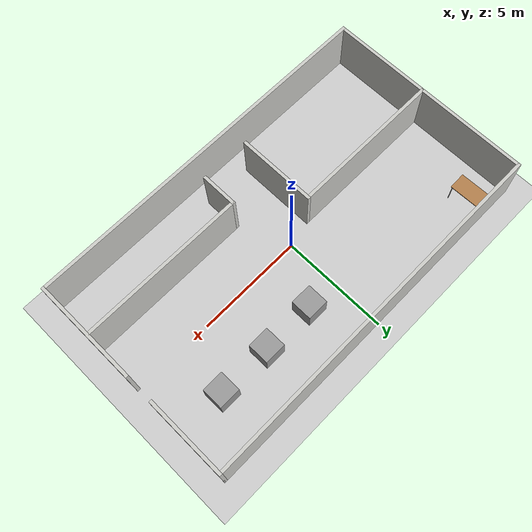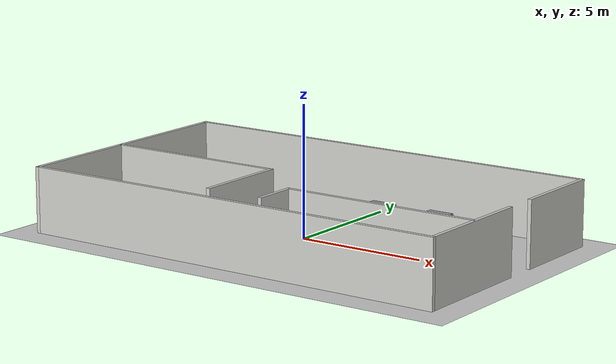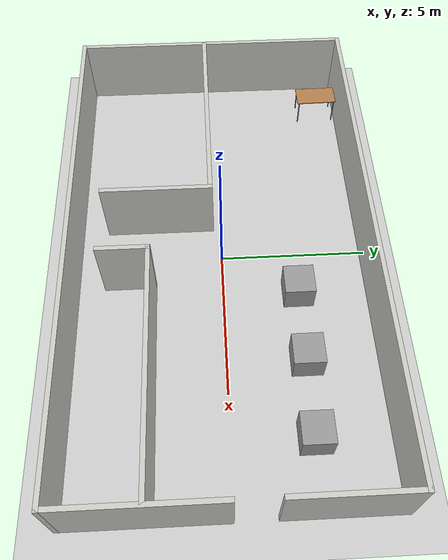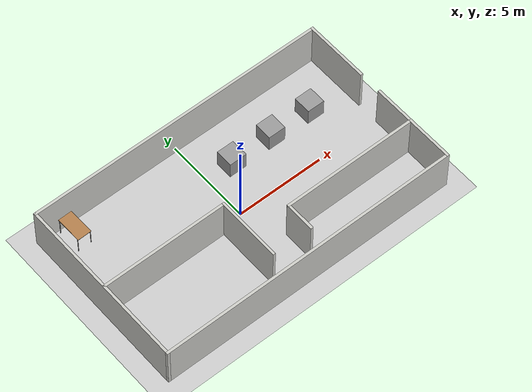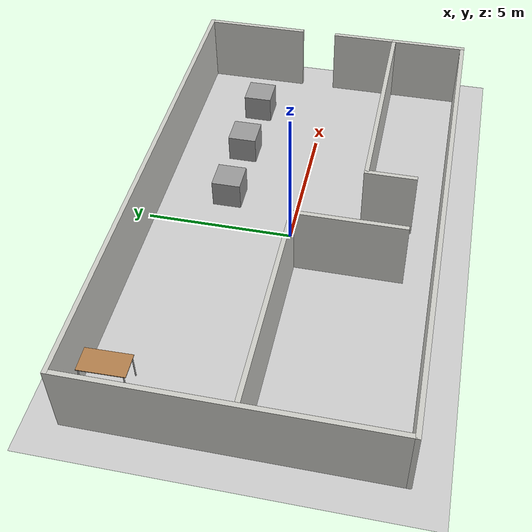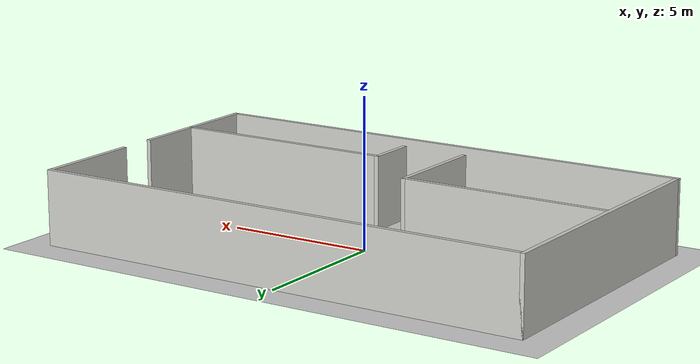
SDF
<sdf version="1.6">
 <world name="default">
  <light name="sun" type="directional">
   <pose>0 0 10 0 -0 0</pose>
   <diffuse>0.8 0.8 0.8 1</diffuse>
   <specular>0.2 0.2 0.2 1</specular>
   <attenuation>
    <range>1000</range>
    <constant>0.9</constant>
    <linear>0.01</linear>
    <quadratic>0.001</quadratic>
   </attenuation>
   <direction>-0.5 0.1 -0.9</direction>
  </light>
  <model name="ground_plane">
   <static>1</static>
   <link name="link">
    <collision name="collision">
     <geometry><plane><normal>0 0 1</normal><size>100 100</size></plane></geometry>
     <surface>
      <contact><collide_bitmask>65535</collide_bitmask></contact>
      <friction><ode><mu>100</mu><mu2>50</mu2></ode></friction>
     </surface>
    </collision>
    <visual name="visual">
     <cast_shadows>0</cast_shadows>
     <geometry><plane><normal>0 0 1</normal><size>100 100</size></plane></geometry>
     <material>
      <script><uri>file://media/materials/scripts/gazebo.material</uri><name>Gazebo/Grey</name></script>
     </material>
    </visual>
   </link>
  </model>
  <gravity>0 0 -9.8</gravity>
  <magnetic_field>6e-06 2.3e-05 -4.2e-05</magnetic_field>
  <atmosphere type="adiabatic"/>
  <physics name="default_physics" default="0" type="ode">
   <max_step_size>0.001</max_step_size>
   <real_time_factor>1</real_time_factor>
   <real_time_update_rate>1000</real_time_update_rate>
  </physics>
  <scene><ambient>0.4 0.4 0.4 1</ambient><background>0.7 0.7 0.7 1</background><shadows>1</shadows></scene>
  <audio><device>default</device></audio>
  <spherical_coordinates>
   <surface_model>EARTH_WGS84</surface_model>
   <latitude_deg>0</latitude_deg>
   <longitude_deg>0</longitude_deg>
   <elevation>0</elevation>
   <heading_deg>0</heading_deg>
  </spherical_coordinates>
  <model name="도면2">
   <pose>0.131104 -0.023581 0 0 -0 0</pose>
   <link name="Wall_0">
    <collision name="Wall_0_Collision">
     <geometry><box><size>5 0.15 2.5</size></box></geometry>
     <pose>0 0 1.25 0 -0 0</pose>
    </collision>
    <visual name="Wall_0_Visual">
     <pose>0 0 1.25 0 -0 0</pose>
     <geometry><box><size>5 0.15 2.5</size></box></geometry>
     <material>
      <script><uri>file://media/materials/scripts/gazebo.material</uri><name>Gazebo/CeilingTiled</name></script>
      <ambient>1 1 1 1</ambient>
     </material>
     <meta><layer>0</layer></meta>
    </visual>
    <pose>8.55 -2.5 0 0 -0 -1.5708</pose>
   </link>
   <link name="Wall_1">
    <collision name="Wall_1_Collision">
     <geometry><box><size>17.25 0.15 2.5</size></box></geometry>
     <pose>0 0 1.25 0 -0 0</pose>
    </collision>
    <visual name="Wall_1_Visual">
     <pose>0 0 1.25 0 -0 0</pose>
     <geometry><box><size>17.25 0.15 2.5</size></box></geometry>
     <material>
      <script><uri>file://media/materials/scripts/gazebo.material</uri><name>Gazebo/CeilingTiled</name></script>
      <ambient>1 1 1 1</ambient>
     </material>
     <meta><layer>0</layer></meta>
    </visual>
    <pose>0 -4.925 0 0 -0 3.14159</pose>
   </link>
   <link name="Wall_12">
    <collision name="Wall_12_Collision">
     <geometry><box><size>1.75 0.15 2.5</size></box></geometry>
     <pose>0 0 1.25 0 -0 0</pose>
    </collision>
    <visual name="Wall_12_Visual">
     <pose>0 0 1.25 0 -0 0</pose>
     <geometry><box><size>1.75 0.15 2.5</size></box></geometry>
     <material>
      <script><uri>file://media/materials/scripts/gazebo.material</uri><name>Gazebo/CeilingTiled</name></script>
      <ambient>1 1 1 1</ambient>
     </material>
     <meta><layer>0</layer></meta>
    </visual>
    <pose>0.88103 -3.10948 0 0 -0 1.5708</pose>
   </link>
   <link name="Wall_13">
    <collision name="Wall_13_Collision">
     <geometry><box><size>7.75 0.15 2.5</size></box></geometry>
     <pose>0 0 1.25 0 -0 0</pose>
    </collision>
    <visual name="Wall_13_Visual">
     <pose>0 0 1.25 0 -0 0</pose>
     <geometry><box><size>7.75 0.15 2.5</size></box></geometry>
     <material>
      <script><uri>file://media/materials/scripts/gazebo.material</uri><name>Gazebo/CeilingTiled</name></script>
      <ambient>1 1 1 1</ambient>
     </material>
     <meta><layer>0</layer></meta>
    </visual>
    <pose>4.68103 -2.30949 0 0 -0 0</pose>
   </link>
   <link name="Wall_2">
    <collision name="Wall_2_Collision">
     <geometry><box><size>10 0.15 2.5</size></box></geometry>
     <pose>0 0 1.25 0 -0 0</pose>
    </collision>
    <visual name="Wall_2_Visual">
     <pose>0 0 1.25 0 -0 0</pose>
     <geometry><box><size>10 0.15 2.5</size></box></geometry>
     <material>
      <script><uri>file://media/materials/scripts/gazebo.material</uri><name>Gazebo/CeilingTiled</name></script>
      <ambient>1 1 1 1</ambient>
     </material>
     <meta><layer>0</layer></meta>
    </visual>
    <pose>-8.55 -0 0 0 -0 1.5708</pose>
   </link>
   <link name="Wall_3">
    <collision name="Wall_3_Collision">
     <geometry><box><size>17.25 0.15 2.5</size></box></geometry>
     <pose>0 0 1.25 0 -0 0</pose>
    </collision>
    <visual name="Wall_3_Visual">
     <pose>0 0 1.25 0 -0 0</pose>
     <geometry><box><size>17.25 0.15 2.5</size></box></geometry>
     <material>
      <script><uri>file://media/materials/scripts/gazebo.material</uri><name>Gazebo/CeilingTiled</name></script>
      <ambient>1 1 1 1</ambient>
     </material>
     <meta><layer>0</layer></meta>
    </visual>
    <pose>0 4.925 0 0 -0 0</pose>
   </link>
   <link name="Wall_4">
    <collision name="Wall_4_Collision">
     <geometry><box><size>3.75 0.15 2.5</size></box></geometry>
     <pose>0 0 1.25 0 -0 0</pose>
    </collision>
    <visual name="Wall_4_Visual">
     <pose>0 0 1.25 0 -0 0</pose>
     <geometry><box><size>3.75 0.15 2.5</size></box></geometry>
     <material>
      <script><uri>file://media/materials/scripts/gazebo.material</uri><name>Gazebo/CeilingTiled</name></script>
      <ambient>1 1 1 1</ambient>
     </material>
     <meta><layer>0</layer></meta>
    </visual>
    <pose>8.55 3.125 0 0 -0 -1.5708</pose>
   </link>
   <link name="Wall_6">
    <collision name="Wall_6_Collision">
     <geometry><box><size>7.25 0.15 2.5</size></box></geometry>
     <pose>0 0 1.25 0 -0 0</pose>
    </collision>
    <visual name="Wall_6_Visual">
     <pose>0 0 1.25 0 -0 0</pose>
     <geometry><box><size>7.25 0.15 2.5</size></box></geometry>
     <material>
      <script><uri>file://media/materials/scripts/gazebo.material</uri><name>Gazebo/CeilingTiled</name></script>
      <ambient>1 1 1 1</ambient>
     </material>
     <meta><layer>0</layer></meta>
    </visual>
    <pose>-4.9617 -0.286073 0 0 -0 0</pose>
   </link>
   <link name="Wall_7">
    <collision name="Wall_7_Collision">
     <geometry><box><size>3.75 0.15 2.5</size></box></geometry>
     <pose>0 0 1.25 0 -0 0</pose>
    </collision>
    <visual name="Wall_7_Visual">
     <pose>0 0 1.25 0 -0 0</pose>
     <geometry><box><size>3.75 0.15 2.5</size></box></geometry>
     <material>
      <script><uri>file://media/materials/scripts/gazebo.material</uri><name>Gazebo/CeilingTiled</name></script>
      <ambient>1 1 1 1</ambient>
     </material>
     <meta><layer>0</layer></meta>
    </visual>
    <pose>-1.4117 -2.08607 0 0 -0 -1.5708</pose>
   </link>
   <static>1</static>
  </model>
  <model name="unit_box_0">
   <pose>1.52041 2.49464 0.5 0 -0 0</pose>
   <link name="link">
    <inertial>
     <mass>1</mass>
     <inertia>
      <ixx>0.166667</ixx>
      <ixy>0</ixy>
      <ixz>0</ixz>
      <iyy>0.166667</iyy>
      <iyz>0</iyz>
      <izz>0.166667</izz>
     </inertia>
    </inertial>
    <collision name="collision"><geometry><box><size>1 1 1</size></box></geometry></collision>
    <visual name="visual">
     <geometry><box><size>1 1 1</size></box></geometry>
     <material>
      <script><name>Gazebo/Grey</name><uri>file://media/materials/scripts/gazebo.material</uri></script>
     </material>
    </visual>
   </link>
  </model>
  <model name="unit_box_1">
   <pose>3.99696 2.52128 0.5 0 -0 0</pose>
   <link name="link">
    <inertial>
     <mass>1</mass>
     <inertia>
      <ixx>0.166667</ixx>
      <ixy>0</ixy>
      <ixz>0</ixz>
      <iyy>0.166667</iyy>
      <iyz>0</iyz>
      <izz>0.166667</izz>
     </inertia>
    </inertial>
    <collision name="collision"><geometry><box><size>1 1 1</size></box></geometry></collision>
    <visual name="visual">
     <geometry><box><size>1 1 1</size></box></geometry>
     <material>
      <script><name>Gazebo/Grey</name><uri>file://media/materials/scripts/gazebo.material</uri></script>
     </material>
    </visual>
   </link>
  </model>
  <model name="unit_box_2">
   <pose>6.47309 2.50372 0.5 0 -0 0</pose>
   <link name="link">
    <inertial>
     <mass>1</mass>
     <inertia>
      <ixx>0.166667</ixx>
      <ixy>0</ixy>
      <ixz>0</ixz>
      <iyy>0.166667</iyy>
      <iyz>0</iyz>
      <izz>0.166667</izz>
     </inertia>
    </inertial>
    <collision name="collision"><geometry><box><size>1 1 1</size></box></geometry></collision>
    <visual name="visual">
     <geometry><box><size>1 1 1</size></box></geometry>
     <material>
      <script><name>Gazebo/Grey</name><uri>file://media/materials/scripts/gazebo.material</uri></script>
     </material>
    </visual>
   </link>
  </model>
  <model name="table">
   <static>1</static>
   <link name="link">
    <collision name="surface">
     <pose>0 0 1 0 -0 0</pose>
     <geometry><box><size>1.5 0.8 0.03</size></box></geometry>
     <surface><friction><ode><mu>0.6</mu><mu2>0.6</mu2></ode></friction></surface>
    </collision>
    <visual name="visual1">
     <pose>0 0 1 0 -0 0</pose>
     <geometry><box><size>1.5 0.8 0.03</size></box></geometry>
     <material>
      <script><uri>file://media/materials/scripts/gazebo.material</uri><name>Gazebo/Wood</name></script>
     </material>
    </visual>
    <collision name="front_left_leg">
     <pose>0.68 0.38 0.5 0 -0 0</pose>
     <geometry><cylinder><radius>0.02</radius><length>1</length></cylinder></geometry>
    </collision>
    <visual name="front_left_leg">
     <pose>0.68 0.38 0.5 0 -0 0</pose>
     <geometry><cylinder><radius>0.02</radius><length>1</length></cylinder></geometry>
     <material>
      <script><uri>file://media/materials/scripts/gazebo.material</uri><name>Gazebo/Grey</name></script>
     </material>
    </visual>
    <collision name="front_right_leg">
     <pose>0.68 -0.38 0.5 0 -0 0</pose>
     <geometry><cylinder><radius>0.02</radius><length>1</length></cylinder></geometry>
    </collision>
    <visual name="front_right_leg">
     <pose>0.68 -0.38 0.5 0 -0 0</pose>
     <geometry><cylinder><radius>0.02</radius><length>1</length></cylinder></geometry>
     <material>
      <script><uri>file://media/materials/scripts/gazebo.material</uri><name>Gazebo/Grey</name></script>
     </material>
    </visual>
    <collision name="back_right_leg">
     <pose>-0.68 -0.38 0.5 0 -0 0</pose>
     <geometry><cylinder><radius>0.02</radius><length>1</length></cylinder></geometry>
    </collision>
    <visual name="back_right_leg">
     <pose>-0.68 -0.38 0.5 0 -0 0</pose>
     <geometry><cylinder><radius>0.02</radius><length>1</length></cylinder></geometry>
     <material>
      <script><uri>file://media/materials/scripts/gazebo.material</uri><name>Gazebo/Grey</name></script>
     </material>
    </visual>
    <collision name="back_left_leg">
     <pose>-0.68 0.38 0.5 0 -0 0</pose>
     <geometry><cylinder><radius>0.02</radius><length>1</length></cylinder></geometry>
    </collision>
    <visual name="back_left_leg">
     <pose>-0.68 0.38 0.5 0 -0 0</pose>
     <geometry><cylinder><radius>0.02</radius><length>1</length></cylinder></geometry>
     <material>
      <script><uri>file://media/materials/scripts/gazebo.material</uri><name>Gazebo/Grey</name></script>
     </material>
    </visual>
   </link>
   <pose>-6.86747 4.02231 0 0 0 -1.55</pose>
  </model>
 </world>
</sdf>
